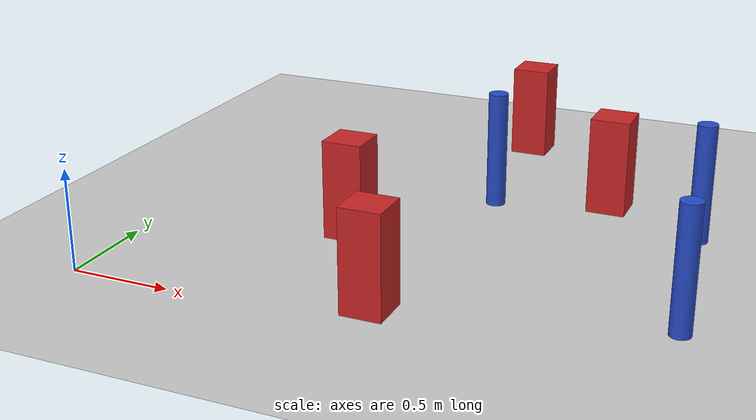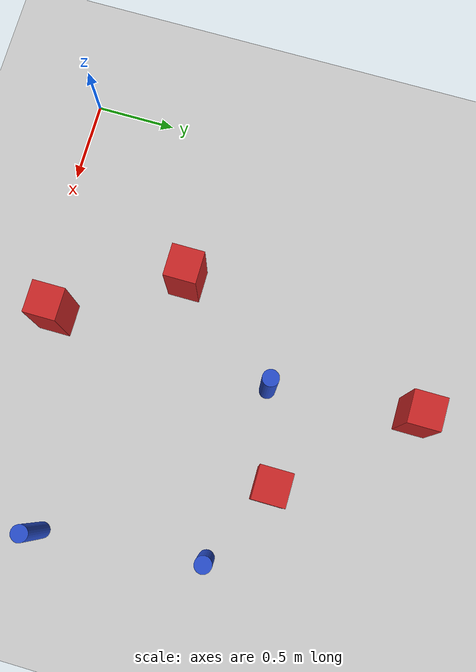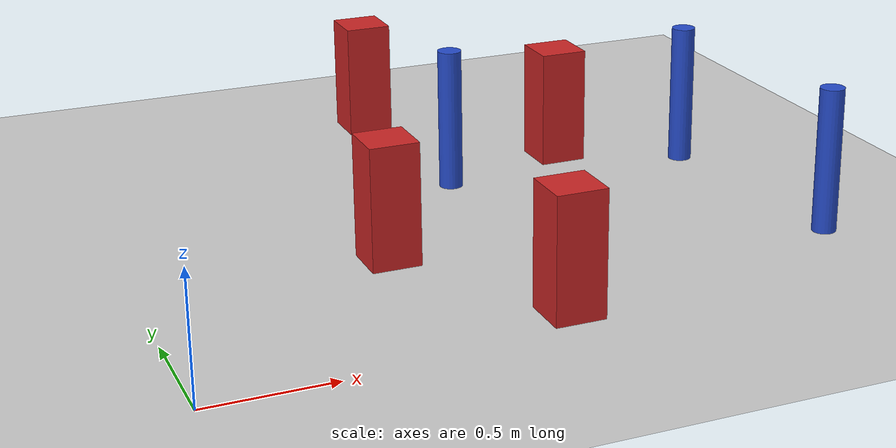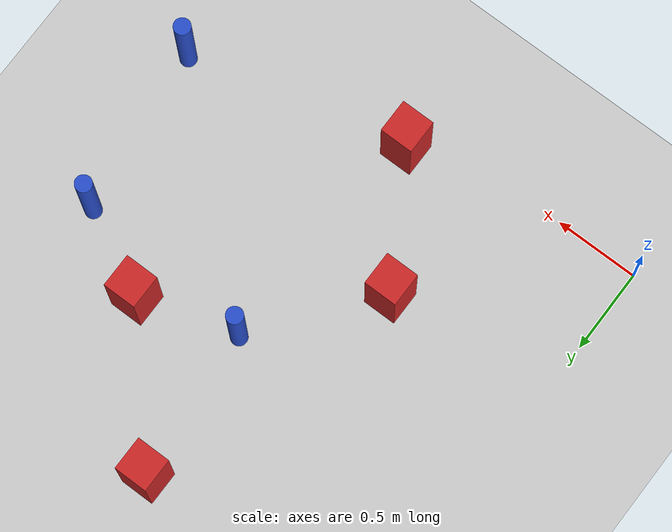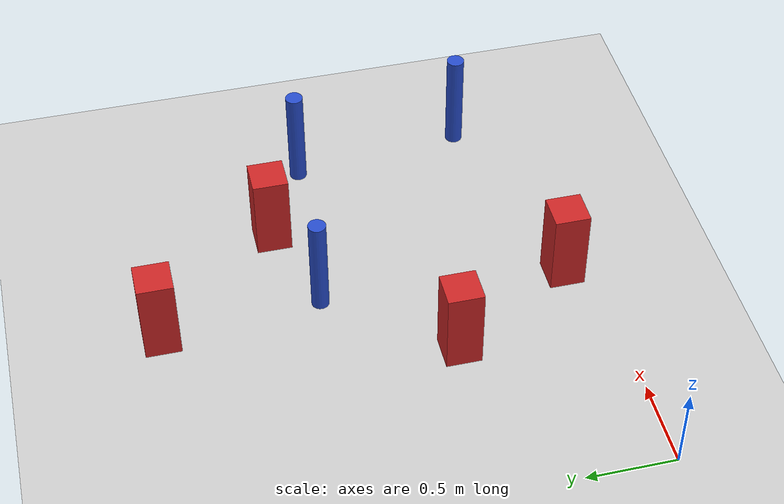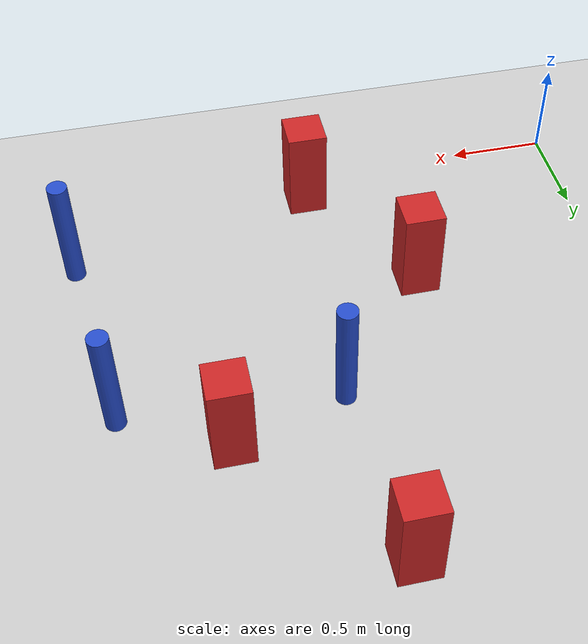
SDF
<sdf version="1.6">
 <world name="default">
  <model name="ground_plane">
   <static>1</static>
   <link name="link">
    <collision name="collision">
     <geometry><plane><normal>0 0 1</normal><size>100 100</size></plane></geometry>
     <surface><friction><ode><mu>100</mu><mu2>50</mu2></ode></friction></surface>
    </collision>
    <visual name="visual">
     <cast_shadows>0</cast_shadows>
     <geometry><plane><normal>0 0 1</normal><size>100 100</size></plane></geometry>
     <material>
      <ambient>1.0 1.0 1.0 1.0</ambient>
      <diffuse>0.8 0.8 0.8 1.0</diffuse>
      <specular>0.01 0.01 0.01 1.000000</specular>
     </material>
    </visual>
   </link>
  </model>
  <model name="square_post_obstacle29">
   <static>true</static>
   <pose>0.985082252736 0.896909463291 8.22691968438e-08 7.2212513382e-06 -7.54495500217e-07 2.29674213826e-05</pose>
   <link name="link">
    <pose>0 0 0.25 0 -0 0</pose>
    <inertial>
     <mass>100</mass>
     <inertia>
      <ixx>0.166667</ixx>
      <ixy>0</ixy>
      <ixz>0</ixz>
      <iyy>0.166667</iyy>
      <iyz>0</iyz>
      <izz>0.166667</izz>
     </inertia>
    </inertial>
    <collision name="collision"><geometry><box><size>.2 .2 .5</size></box></geometry></collision>
    <visual name="visual">
     <geometry><box><size>.2 .2 .5</size></box></geometry>
     <material>
      <script><name>Gazebo/Red</name><uri>file://media/materials/scripts/gazebo.material</uri></script>
     </material>
    </visual>
   </link>
  </model>
  <model name="pole_obstacle101">
   <static>true</static>
   <pose>1.5087841471 1.5622347193 2.88873142074e-08 -9.90536689672e-09 4.60219948993e-07 -1.20965994959e-07</pose>
   <link name="link">
    <pose>0 0 0.3 0 -0 0</pose>
    <inertial>
     <mass>1</mass>
     <inertia><ixx>0.145833</ixx><ixy>0</ixy><ixz>0</ixz><iyy>0.145833</iyy><iyz>0</iyz><izz>0.125</izz></inertia>
    </inertial>
    <collision name="collision">
     <geometry><cylinder><radius>0.05</radius><length>.6</length></cylinder></geometry>
    </collision>
    <visual name="visual">
     <geometry><cylinder><radius>0.05</radius><length>.6</length></cylinder></geometry>
     <material>
      <script><name>Gazebo/Blue</name><uri>file://media/materials/scripts/gazebo.material</uri></script>
     </material>
    </visual>
   </link>
  </model>
  <model name="square_post_obstacle97">
   <static>true</static>
   <pose>1.41581463398 0.179686824386 8.22691968438e-08 7.2212513382e-06 -7.54495500217e-07 2.29674213826e-05</pose>
   <link name="link">
    <pose>0 0 0.25 0 -0 0</pose>
    <inertial>
     <mass>100</mass>
     <inertia>
      <ixx>0.166667</ixx>
      <ixy>0</ixy>
      <ixz>0</ixz>
      <iyy>0.166667</iyy>
      <iyz>0</iyz>
      <izz>0.166667</izz>
     </inertia>
    </inertial>
    <collision name="collision"><geometry><box><size>.2 .2 .5</size></box></geometry></collision>
    <visual name="visual">
     <geometry><box><size>.2 .2 .5</size></box></geometry>
     <material>
      <script><name>Gazebo/Red</name><uri>file://media/materials/scripts/gazebo.material</uri></script>
     </material>
    </visual>
   </link>
  </model>
  <model name="square_post_obstacle113">
   <static>true</static>
   <pose>2.07433042967 1.73295867308 8.22691968438e-08 7.2212513382e-06 -7.54495500217e-07 2.29674213826e-05</pose>
   <link name="link">
    <pose>0 0 0.25 0 -0 0</pose>
    <inertial>
     <mass>100</mass>
     <inertia>
      <ixx>0.166667</ixx>
      <ixy>0</ixy>
      <ixz>0</ixz>
      <iyy>0.166667</iyy>
      <iyz>0</iyz>
      <izz>0.166667</izz>
     </inertia>
    </inertial>
    <collision name="collision"><geometry><box><size>.2 .2 .5</size></box></geometry></collision>
    <visual name="visual">
     <geometry><box><size>.2 .2 .5</size></box></geometry>
     <material>
      <script><name>Gazebo/Red</name><uri>file://media/materials/scripts/gazebo.material</uri></script>
     </material>
    </visual>
   </link>
  </model>
  <model name="pole_obstacle125">
   <static>true</static>
   <pose>2.57698035668 1.48035058824 2.88873142074e-08 -9.90536689395e-09 4.60219949e-07 -1.20965994953e-07</pose>
   <link name="link">
    <pose>0 0 0.3 0 -0 0</pose>
    <inertial>
     <mass>1</mass>
     <inertia><ixx>0.145833</ixx><ixy>0</ixy><ixz>0</ixz><iyy>0.145833</iyy><iyz>0</iyz><izz>0.125</izz></inertia>
    </inertial>
    <collision name="collision">
     <geometry><cylinder><radius>0.05</radius><length>.6</length></cylinder></geometry>
    </collision>
    <visual name="visual">
     <geometry><cylinder><radius>0.05</radius><length>.6</length></cylinder></geometry>
     <material>
      <script><name>Gazebo/Blue</name><uri>file://media/materials/scripts/gazebo.material</uri></script>
     </material>
    </visual>
   </link>
  </model>
  <model name="square_post_obstacle149">
   <static>true</static>
   <pose>1.42846910395 2.4637830657 8.22691968438e-08 7.2212513382e-06 -7.54495500217e-07 2.29674213826e-05</pose>
   <link name="link">
    <pose>0 0 0.25 0 -0 0</pose>
    <inertial>
     <mass>100</mass>
     <inertia>
      <ixx>0.166667</ixx>
      <ixy>0</ixy>
      <ixz>0</ixz>
      <iyy>0.166667</iyy>
      <iyz>0</iyz>
      <izz>0.166667</izz>
     </inertia>
    </inertial>
    <collision name="collision"><geometry><box><size>.2 .2 .5</size></box></geometry></collision>
    <visual name="visual">
     <geometry><box><size>.2 .2 .5</size></box></geometry>
     <material>
      <script><name>Gazebo/Red</name><uri>file://media/materials/scripts/gazebo.material</uri></script>
     </material>
    </visual>
   </link>
  </model>
  <model name="pole_obstacle192">
   <static>true</static>
   <pose>2.69076562184 0.483588239248 2.88873142074e-08 -9.90536689151e-09 4.60219949006e-07 -1.20965994951e-07</pose>
   <link name="link">
    <pose>0 0 0.3 0 -0 0</pose>
    <inertial>
     <mass>1</mass>
     <inertia><ixx>0.145833</ixx><ixy>0</ixy><ixz>0</ixz><iyy>0.145833</iyy><iyz>0</iyz><izz>0.125</izz></inertia>
    </inertial>
    <collision name="collision">
     <geometry><cylinder><radius>0.05</radius><length>.6</length></cylinder></geometry>
    </collision>
    <visual name="visual">
     <geometry><cylinder><radius>0.05</radius><length>.6</length></cylinder></geometry>
     <material>
      <script><name>Gazebo/Blue</name><uri>file://media/materials/scripts/gazebo.material</uri></script>
     </material>
    </visual>
   </link>
  </model>
 </world>
</sdf>
